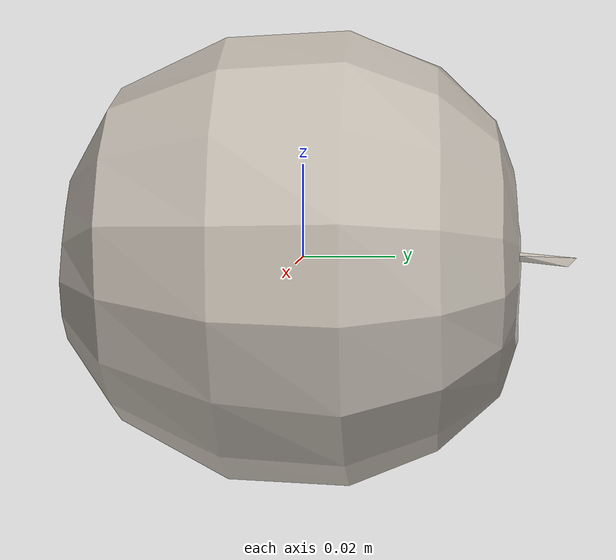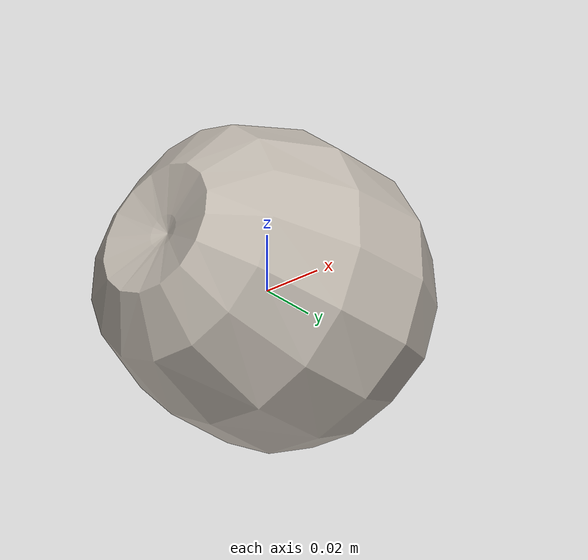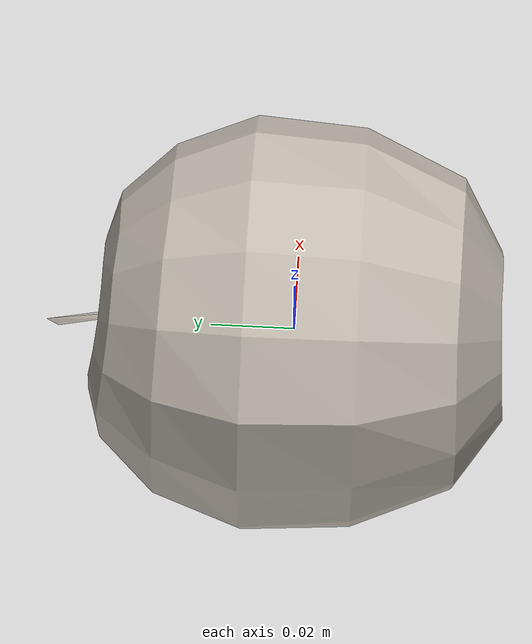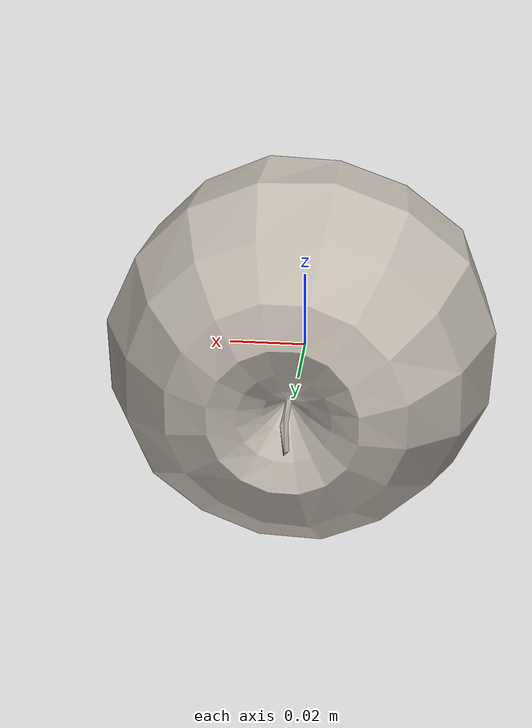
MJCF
<mujoco model="Apple_8">
  <compiler autolimits="true" boundmass="0.01" angle="radian"/>
  <default>
    <default class="/">
      <default class="__VISUAL_MJT__">
        <geom contype="0" conaffinity="0" group="0"/>
      </default>
      <default class="__STRUCTURAL_MJT__">
        <geom contype="8" conaffinity="15" group="4" friction="0.90000000000000002 0.90000000000000002 0.001" solref="0.025000000000000001 1" solimp="0.998 0.998 0.001"/>
      </default>
      <default class="__DYNAMIC_MJT__">
        <geom contype="1" conaffinity="15" group="4" friction="0.90000000000000002 0.90000000000000002 0.001" solref="0.025000000000000001 1" solimp="0.998 0.998 0.001"/>
      </default>
    </default>
  </default>
  <asset>
    <texture name="Apple1_Mat8" type="2d" file="Apple1_AlbedoTransparency8.png"/>
    <material name="material_Apple1_Mat8" class="/" texture="Apple1_Mat8" specular="0.5" shininess="0.5" rgba="1 1 1 1"/>
    <mesh name="Apple_8_apple_a8" class="/" file="Apple_8_apple_a8/Apple_8_apple_a8.obj" scale="1 1 1"/>
  </asset>
  <worldbody>
    <body name="Apple_8">
      <joint name="Apple_8_free" class="/" type="free" pos="0 0 0" axis="0 0 1" stiffness="0" range="0 0" armature="0" damping="0.10000000000000001" frictionloss="0"/>
      <body name="Apple_8_apple_a8" pos="-0 -0.01584 0" quat="1 0 0 0">
        <geom name="Apple_8_apple_a8" class="__VISUAL_MJT__" type="mesh" material="material_Apple1_Mat8" shellinertia="false" mesh="Apple_8_apple_a8"/>
        <geom name="Apple_8_PrimitiveCollider_0" class="__DYNAMIC_MJT__" type="capsule" size="0.050705030560493469 0.0023587346076965332" rgba="0 1 0 1" pos="-0 0.015837252140045166 0" quat="0.70710678118654757 0.70710678118654746 0 0"/>
      </body>
    </body>
  </worldbody>
</mujoco>
